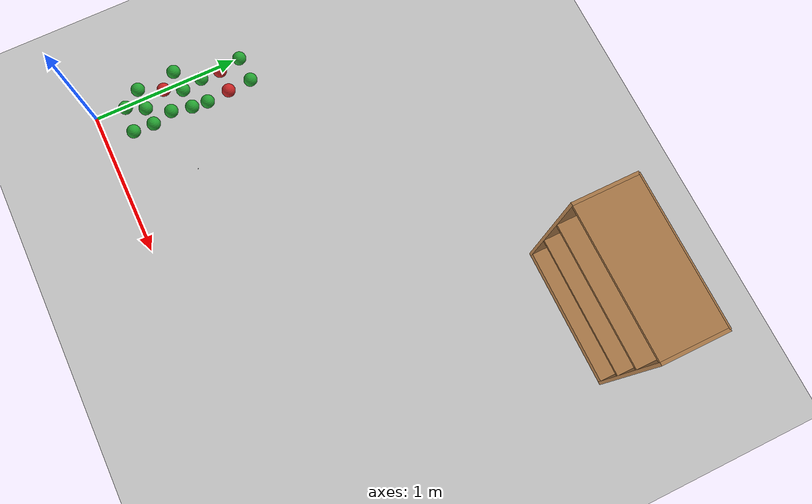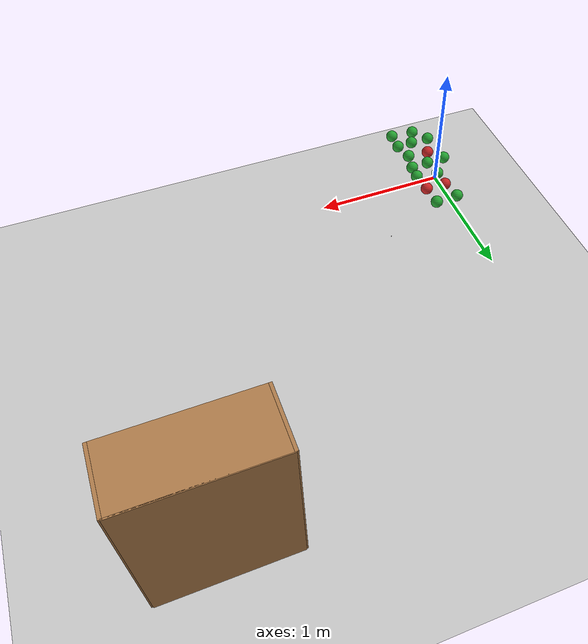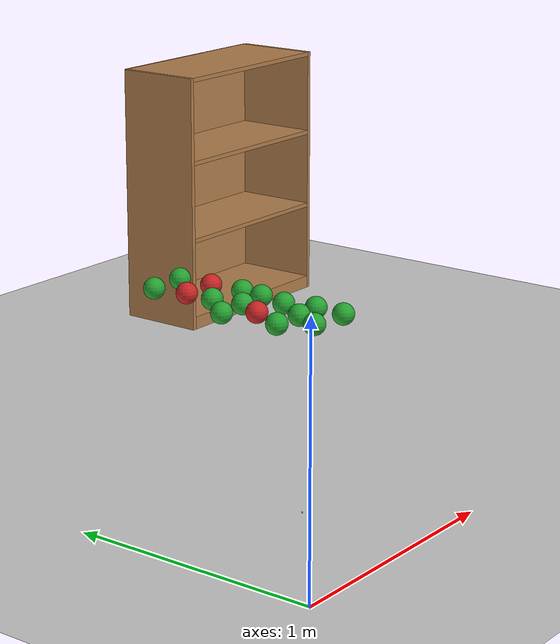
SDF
<sdf version="1.6">
 <world name="default">
  <model name="ground_plane">
   <static>1</static>
   <link name="link">
    <collision name="collision">
     <geometry><plane><normal>0 0 1</normal><size>100 100</size></plane></geometry>
     <surface><friction><ode><mu>100</mu><mu2>50</mu2></ode></friction></surface>
    </collision>
    <visual name="visual">
     <cast_shadows>0</cast_shadows>
     <geometry><plane><normal>0 0 1</normal><size>100 100</size></plane></geometry>
     <material>
      <script><uri>file://media/materials/scripts/gazebo.material</uri><name>Gazebo/Grey</name></script>
     </material>
    </visual>
   </link>
  </model>
  <model name="bookshelf_0">
   <static>1</static>
   <link name="link">
    <inertial><mass>1</mass></inertial>
    <collision name="back">
     <pose>0 0.005 0.6 0 -0 0</pose>
     <geometry><box><size>0.9 0.01 1.2</size></box></geometry>
    </collision>
    <visual name="visual1">
     <pose>0 0.005 0.6 0 -0 0</pose>
     <geometry><box><size>0.9 0.01 1.2</size></box></geometry>
     <material>
      <script><uri>file://media/materials/scripts/gazebo.material</uri><name>Gazebo/Wood</name></script>
     </material>
    </visual>
    <collision name="left_side">
     <pose>0.45 -0.195 0.6 0 -0 0</pose>
     <geometry><box><size>0.02 0.4 1.2</size></box></geometry>
    </collision>
    <visual name="visual2">
     <pose>0.45 -0.195 0.6 0 -0 0</pose>
     <geometry><box><size>0.02 0.4 1.2</size></box></geometry>
     <material>
      <script><uri>file://media/materials/scripts/gazebo.material</uri><name>Gazebo/Wood</name></script>
     </material>
    </visual>
    <collision name="right_side">
     <pose>-0.45 -0.195 0.6 0 -0 0</pose>
     <geometry><box><size>0.02 0.4 1.2</size></box></geometry>
    </collision>
    <visual name="visual3">
     <pose>-0.45 -0.195 0.6 0 -0 0</pose>
     <geometry><box><size>0.02 0.4 1.2</size></box></geometry>
     <material>
      <script><uri>file://media/materials/scripts/gazebo.material</uri><name>Gazebo/Wood</name></script>
     </material>
    </visual>
    <collision name="bottom">
     <pose>0 -0.195 0.03 0 -0 0</pose>
     <geometry><box><size>0.88 0.4 0.06</size></box></geometry>
    </collision>
    <visual name="visual4">
     <pose>0 -0.195 0.03 0 -0 0</pose>
     <geometry><box><size>0.88 0.4 0.06</size></box></geometry>
     <material>
      <script><uri>file://media/materials/scripts/gazebo.material</uri><name>Gazebo/Wood</name></script>
     </material>
    </visual>
    <collision name="top">
     <pose>0 -0.195 1.19 0 -0 0</pose>
     <geometry><box><size>0.88 0.4 0.02</size></box></geometry>
    </collision>
    <visual name="visual5">
     <pose>0 -0.195 1.19 0 -0 0</pose>
     <geometry><box><size>0.88 0.4 0.02</size></box></geometry>
     <material>
      <script><uri>file://media/materials/scripts/gazebo.material</uri><name>Gazebo/Wood</name></script>
     </material>
    </visual>
    <collision name="low_shelf">
     <pose>0 -0.195 0.43 0 -0 0</pose>
     <geometry><box><size>0.88 0.4 0.02</size></box></geometry>
    </collision>
    <visual name="visual6">
     <pose>0 -0.195 0.43 0 -0 0</pose>
     <geometry><box><size>0.88 0.4 0.02</size></box></geometry>
     <material>
      <script><uri>file://media/materials/scripts/gazebo.material</uri><name>Gazebo/Wood</name></script>
     </material>
    </visual>
    <collision name="high_shelf">
     <pose>0 -0.195 0.8 0 -0 0</pose>
     <geometry><box><size>0.88 0.4 0.02</size></box></geometry>
    </collision>
    <visual name="visual7">
     <pose>0 -0.195 0.8 0 -0 0</pose>
     <geometry><box><size>0.88 0.4 0.02</size></box></geometry>
     <material>
      <script><uri>file://media/materials/scripts/gazebo.material</uri><name>Gazebo/Wood</name></script>
     </material>
    </visual>
   </link>
   <pose>2.52008 2.58706 0 0 -0 0</pose>
  </model>
  <model name="ball_bearing">
   <link name="link">
    <pose>0 0 0.003 0 -0 0</pose>
    <inertial>
     <mass>0.0011</mass>
     <inertia>
      <ixx>3.96e-09</ixx>
      <ixy>0</ixy>
      <ixz>0</ixz>
      <iyy>3.96e-09</iyy>
      <iyz>0</iyz>
      <izz>3.96e-09</izz>
     </inertia>
    </inertial>
    <collision name="collision">
     <geometry><sphere><radius>0.003</radius></sphere></geometry>
     <surface>
      <contact>
       <poissons_ratio>0.305</poissons_ratio>
       <elastic_modulus>2e+11</elastic_modulus>
       <ode><kp>100000</kp><kd>100</kd><max_vel>100</max_vel><min_depth>0.001</min_depth></ode>
      </contact>
      <friction>
       <torsional>
        <coefficient>1</coefficient>
        <use_patch_radius>0</use_patch_radius>
        <surface_radius>0.01</surface_radius>
       </torsional>
      </friction>
     </surface>
    </collision>
    <visual name="visual">
     <geometry><sphere><radius>0.003</radius></sphere></geometry>
     <material>
      <script><uri>file://media/materials/scripts/gazebo.material</uri><name>Gazebo/Grey</name></script>
     </material>
    </visual>
    <velocity_decay><linear>0</linear><angular>0.005</angular></velocity_decay>
   </link>
   <pose>0.615587 0.485101 -0.001 0 -0 0</pose>
  </model>
  <model name="green_apple">
   <link name="link">
    <inertial>
     <mass>1</mass>
     <inertia><ixx>0.1</ixx><ixy>0</ixy><ixz>0</ixz><iyy>0.1</iyy><iyz>0</iyz><izz>0.1</izz></inertia>
    </inertial>
    <visual name="visual">
     <geometry><sphere><radius>0.04</radius></sphere></geometry>
     <material>
      <script><name>Gazebo/Green</name><uri>file://media/materials/scripts/gazebo.material</uri></script>
      <shader type="vertex"><normal_map>__default__</normal_map></shader>
      <ambient>0 1 0 1</ambient>
      <diffuse>0.7 0.7 0.7 1</diffuse>
      <specular>0.01 0.01 0.01 1</specular>
      <emissive>0 0 0 1</emissive>
     </material>
    </visual>
    <collision name="collision">
     <geometry><sphere><radius>0.04</radius></sphere></geometry>
     <surface>
      <friction>
       <ode><mu>1</mu><mu2>1</mu2><fdir1>0 0 0</fdir1><slip1>0</slip1><slip2>0</slip2></ode>
       <torsional>
        <coefficient>1</coefficient>
        <patch_radius>0</patch_radius>
        <surface_radius>0</surface_radius>
        <use_patch_radius>1</use_patch_radius>
        <ode><slip>0</slip></ode>
       </torsional>
      </friction>
      <bounce><restitution_coefficient>0</restitution_coefficient><threshold>1e+06</threshold></bounce>
      <contact>
       <collide_without_contact>0</collide_without_contact>
       <collide_without_contact_bitmask>1</collide_without_contact_bitmask>
       <collide_bitmask>1</collide_bitmask>
       <ode>
        <soft_cfm>0</soft_cfm>
        <soft_erp>0.2</soft_erp>
        <kp>1e+13</kp>
        <kd>1</kd>
        <max_vel>0.01</max_vel>
        <min_depth>0</min_depth>
       </ode>
       <bullet>
        <split_impulse>1</split_impulse>
        <split_impulse_penetration_threshold>-0.01</split_impulse_penetration_threshold>
        <soft_cfm>0</soft_cfm>
        <soft_erp>0.2</soft_erp>
        <kp>1e+13</kp>
        <kd>1</kd>
       </bullet>
      </contact>
     </surface>
    </collision>
   </link>
   <static>0</static>
   <pose>0.551902 0.999522 0.815 0 -0 0</pose>
  </model>
  <model name="red_apple">
   <link name="link">
    <inertial>
     <mass>1</mass>
     <inertia><ixx>0.1</ixx><ixy>0</ixy><ixz>0</ixz><iyy>0.1</iyy><iyz>0</iyz><izz>0.1</izz></inertia>
    </inertial>
    <visual name="visual">
     <geometry><sphere><radius>0.04</radius></sphere></geometry>
     <material>
      <script><name>Gazebo/Red</name><uri>file://media/materials/scripts/gazebo.material</uri></script>
      <shader type="vertex"><normal_map>__default__</normal_map></shader>
      <ambient>1 0 0 1</ambient>
      <diffuse>0.7 0.7 0.7 1</diffuse>
      <specular>0.01 0.01 0.01 1</specular>
      <emissive>0 0 0 1</emissive>
     </material>
    </visual>
    <collision name="collision">
     <geometry><sphere><radius>0.04</radius></sphere></geometry>
     <surface>
      <friction>
       <ode><mu>1</mu><mu2>1</mu2><fdir1>0 0 0</fdir1><slip1>0</slip1><slip2>0</slip2></ode>
       <torsional>
        <coefficient>1</coefficient>
        <patch_radius>0</patch_radius>
        <surface_radius>0</surface_radius>
        <use_patch_radius>1</use_patch_radius>
        <ode><slip>0</slip></ode>
       </torsional>
      </friction>
      <bounce><restitution_coefficient>0</restitution_coefficient><threshold>1e+06</threshold></bounce>
      <contact>
       <collide_without_contact>0</collide_without_contact>
       <collide_without_contact_bitmask>1</collide_without_contact_bitmask>
       <collide_bitmask>1</collide_bitmask>
       <ode>
        <soft_cfm>0</soft_cfm>
        <soft_erp>0.2</soft_erp>
        <kp>1e+13</kp>
        <kd>1</kd>
        <max_vel>0.01</max_vel>
        <min_depth>0</min_depth>
       </ode>
       <bullet>
        <split_impulse>1</split_impulse>
        <split_impulse_penetration_threshold>-0.01</split_impulse_penetration_threshold>
        <soft_cfm>0</soft_cfm>
        <soft_erp>0.2</soft_erp>
        <kp>1e+13</kp>
        <kd>1</kd>
       </bullet>
      </contact>
     </surface>
    </collision>
   </link>
   <static>0</static>
   <pose>0.559639 0.858674 0.815 0 -0 0</pose>
  </model>
  <model name="red_apple_clone">
   <link name="link">
    <inertial>
     <mass>1</mass>
     <inertia><ixx>0.1</ixx><ixy>0</ixy><ixz>0</ixz><iyy>0.1</iyy><iyz>0</iyz><izz>0.1</izz></inertia>
    </inertial>
    <visual name="visual">
     <geometry><sphere><radius>0.04</radius></sphere></geometry>
     <material>
      <script><name>Gazebo/Red</name><uri>file://media/materials/scripts/gazebo.material</uri></script>
      <shader type="vertex"><normal_map>__default__</normal_map></shader>
      <ambient>1 0 0 1</ambient>
      <diffuse>0.7 0.7 0.7 1</diffuse>
      <specular>0.01 0.01 0.01 1</specular>
      <emissive>0 0 0 1</emissive>
     </material>
    </visual>
    <collision name="collision">
     <geometry><sphere><radius>0.04</radius></sphere></geometry>
     <surface>
      <friction>
       <ode><mu>1</mu><mu2>1</mu2><fdir1>0 0 0</fdir1><slip1>0</slip1><slip2>0</slip2></ode>
       <torsional>
        <coefficient>1</coefficient>
        <patch_radius>0</patch_radius>
        <surface_radius>0</surface_radius>
        <use_patch_radius>1</use_patch_radius>
        <ode><slip>0</slip></ode>
       </torsional>
      </friction>
      <bounce><restitution_coefficient>0</restitution_coefficient><threshold>1e+06</threshold></bounce>
      <contact>
       <collide_without_contact>0</collide_without_contact>
       <collide_without_contact_bitmask>1</collide_without_contact_bitmask>
       <collide_bitmask>1</collide_bitmask>
       <ode>
        <soft_cfm>0</soft_cfm>
        <soft_erp>0.2</soft_erp>
        <kp>1e+13</kp>
        <kd>1</kd>
        <max_vel>0.01</max_vel>
        <min_depth>0</min_depth>
       </ode>
       <bullet>
        <split_impulse>1</split_impulse>
        <split_impulse_penetration_threshold>-0.01</split_impulse_penetration_threshold>
        <soft_cfm>0</soft_cfm>
        <soft_erp>0.2</soft_erp>
        <kp>1e+13</kp>
        <kd>1</kd>
       </bullet>
      </contact>
     </surface>
    </collision>
   </link>
   <static>0</static>
   <pose>0.424941 0.861418 0.815 0 -0 0</pose>
  </model>
  <model name="green_apple_clone">
   <link name="link">
    <inertial>
     <mass>1</mass>
     <inertia><ixx>0.1</ixx><ixy>0</ixy><ixz>0</ixz><iyy>0.1</iyy><iyz>0</iyz><izz>0.1</izz></inertia>
    </inertial>
    <visual name="visual">
     <geometry><sphere><radius>0.04</radius></sphere></geometry>
     <material>
      <script><name>Gazebo/Green</name><uri>file://media/materials/scripts/gazebo.material</uri></script>
      <shader type="vertex"><normal_map>__default__</normal_map></shader>
      <ambient>0 1 0 1</ambient>
      <diffuse>0.7 0.7 0.7 1</diffuse>
      <specular>0.01 0.01 0.01 1</specular>
      <emissive>0 0 0 1</emissive>
     </material>
    </visual>
    <collision name="collision">
     <geometry><sphere><radius>0.04</radius></sphere></geometry>
     <surface>
      <friction>
       <ode><mu>1</mu><mu2>1</mu2><fdir1>0 0 0</fdir1><slip1>0</slip1><slip2>0</slip2></ode>
       <torsional>
        <coefficient>1</coefficient>
        <patch_radius>0</patch_radius>
        <surface_radius>0</surface_radius>
        <use_patch_radius>1</use_patch_radius>
        <ode><slip>0</slip></ode>
       </torsional>
      </friction>
      <bounce><restitution_coefficient>0</restitution_coefficient><threshold>1e+06</threshold></bounce>
      <contact>
       <collide_without_contact>0</collide_without_contact>
       <collide_without_contact_bitmask>1</collide_without_contact_bitmask>
       <collide_bitmask>1</collide_bitmask>
       <ode>
        <soft_cfm>0</soft_cfm>
        <soft_erp>0.2</soft_erp>
        <kp>1e+13</kp>
        <kd>1</kd>
        <max_vel>0.01</max_vel>
        <min_depth>0</min_depth>
       </ode>
       <bullet>
        <split_impulse>1</split_impulse>
        <split_impulse_penetration_threshold>-0.01</split_impulse_penetration_threshold>
        <soft_cfm>0</soft_cfm>
        <soft_erp>0.2</soft_erp>
        <kp>1e+13</kp>
        <kd>1</kd>
       </bullet>
      </contact>
     </surface>
    </collision>
   </link>
   <static>0</static>
   <pose>0.400447 0.993653 0.815 0 -0 0</pose>
  </model>
  <model name="green_apple_clone_0">
   <link name="link">
    <inertial>
     <mass>1</mass>
     <inertia><ixx>0.1</ixx><ixy>0</ixy><ixz>0</ixz><iyy>0.1</iyy><iyz>0</iyz><izz>0.1</izz></inertia>
    </inertial>
    <visual name="visual">
     <geometry><sphere><radius>0.04</radius></sphere></geometry>
     <material>
      <script><name>Gazebo/Green</name><uri>file://media/materials/scripts/gazebo.material</uri></script>
      <shader type="vertex"><normal_map>__default__</normal_map></shader>
      <ambient>0 1 0 1</ambient>
      <diffuse>0.7 0.7 0.7 1</diffuse>
      <specular>0.01 0.01 0.01 1</specular>
      <emissive>0 0 0 1</emissive>
     </material>
    </visual>
    <collision name="collision">
     <geometry><sphere><radius>0.04</radius></sphere></geometry>
     <surface>
      <friction>
       <ode><mu>1</mu><mu2>1</mu2><fdir1>0 0 0</fdir1><slip1>0</slip1><slip2>0</slip2></ode>
       <torsional>
        <coefficient>1</coefficient>
        <patch_radius>0</patch_radius>
        <surface_radius>0</surface_radius>
        <use_patch_radius>1</use_patch_radius>
        <ode><slip>0</slip></ode>
       </torsional>
      </friction>
      <bounce><restitution_coefficient>0</restitution_coefficient><threshold>1e+06</threshold></bounce>
      <contact>
       <collide_without_contact>0</collide_without_contact>
       <collide_without_contact_bitmask>1</collide_without_contact_bitmask>
       <collide_bitmask>1</collide_bitmask>
       <ode>
        <soft_cfm>0</soft_cfm>
        <soft_erp>0.2</soft_erp>
        <kp>1e+13</kp>
        <kd>1</kd>
        <max_vel>0.01</max_vel>
        <min_depth>0</min_depth>
       </ode>
       <bullet>
        <split_impulse>1</split_impulse>
        <split_impulse_penetration_threshold>-0.01</split_impulse_penetration_threshold>
        <soft_cfm>0</soft_cfm>
        <soft_erp>0.2</soft_erp>
        <kp>1e+13</kp>
        <kd>1</kd>
       </bullet>
      </contact>
     </surface>
    </collision>
   </link>
   <static>0</static>
   <pose>0.423986 0.743621 0.815 0 -0 0</pose>
  </model>
  <model name="green_apple_clone_1">
   <link name="link">
    <inertial>
     <mass>1</mass>
     <inertia><ixx>0.1</ixx><ixy>0</ixy><ixz>0</ixz><iyy>0.1</iyy><iyz>0</iyz><izz>0.1</izz></inertia>
    </inertial>
    <visual name="visual">
     <geometry><sphere><radius>0.04</radius></sphere></geometry>
     <material>
      <script><name>Gazebo/Green</name><uri>file://media/materials/scripts/gazebo.material</uri></script>
      <shader type="vertex"><normal_map>__default__</normal_map></shader>
      <ambient>0 1 0 1</ambient>
      <diffuse>0.7 0.7 0.7 1</diffuse>
      <specular>0.01 0.01 0.01 1</specular>
      <emissive>0 0 0 1</emissive>
     </material>
    </visual>
    <collision name="collision">
     <geometry><sphere><radius>0.04</radius></sphere></geometry>
     <surface>
      <friction>
       <ode><mu>1</mu><mu2>1</mu2><fdir1>0 0 0</fdir1><slip1>0</slip1><slip2>0</slip2></ode>
       <torsional>
        <coefficient>1</coefficient>
        <patch_radius>0</patch_radius>
        <surface_radius>0</surface_radius>
        <use_patch_radius>1</use_patch_radius>
        <ode><slip>0</slip></ode>
       </torsional>
      </friction>
      <bounce><restitution_coefficient>0</restitution_coefficient><threshold>1e+06</threshold></bounce>
      <contact>
       <collide_without_contact>0</collide_without_contact>
       <collide_without_contact_bitmask>1</collide_without_contact_bitmask>
       <collide_bitmask>1</collide_bitmask>
       <ode>
        <soft_cfm>0</soft_cfm>
        <soft_erp>0.2</soft_erp>
        <kp>1e+13</kp>
        <kd>1</kd>
        <max_vel>0.01</max_vel>
        <min_depth>0</min_depth>
       </ode>
       <bullet>
        <split_impulse>1</split_impulse>
        <split_impulse_penetration_threshold>-0.01</split_impulse_penetration_threshold>
        <soft_cfm>0</soft_cfm>
        <soft_erp>0.2</soft_erp>
        <kp>1e+13</kp>
        <kd>1</kd>
       </bullet>
      </contact>
     </surface>
    </collision>
   </link>
   <static>0</static>
   <pose>0.570669 0.723231 0.815 0 -0 0</pose>
  </model>
  <model name="green_apple_clone_7">
   <link name="link">
    <inertial>
     <mass>1</mass>
     <inertia><ixx>0.1</ixx><ixy>0</ixy><ixz>0</ixz><iyy>0.1</iyy><iyz>0</iyz><izz>0.1</izz></inertia>
    </inertial>
    <visual name="visual">
     <geometry><sphere><radius>0.04</radius></sphere></geometry>
     <material>
      <script><name>Gazebo/Green</name><uri>file://media/materials/scripts/gazebo.material</uri></script>
      <shader type="vertex"><normal_map>__default__</normal_map></shader>
      <ambient>0 1 0 1</ambient>
      <diffuse>0.7 0.7 0.7 1</diffuse>
      <specular>0.01 0.01 0.01 1</specular>
      <emissive>0 0 0 1</emissive>
     </material>
    </visual>
    <collision name="collision">
     <geometry><sphere><radius>0.04</radius></sphere></geometry>
     <surface>
      <friction>
       <ode><mu>1</mu><mu2>1</mu2><fdir1>0 0 0</fdir1><slip1>0</slip1><slip2>0</slip2></ode>
       <torsional>
        <coefficient>1</coefficient>
        <patch_radius>0</patch_radius>
        <surface_radius>0</surface_radius>
        <use_patch_radius>1</use_patch_radius>
        <ode><slip>0</slip></ode>
       </torsional>
      </friction>
      <bounce><restitution_coefficient>0</restitution_coefficient><threshold>1e+06</threshold></bounce>
      <contact>
       <collide_without_contact>0</collide_without_contact>
       <collide_without_contact_bitmask>1</collide_without_contact_bitmask>
       <collide_bitmask>1</collide_bitmask>
       <ode>
        <soft_cfm>0</soft_cfm>
        <soft_erp>0.2</soft_erp>
        <kp>1e+13</kp>
        <kd>1</kd>
        <max_vel>0.01</max_vel>
        <min_depth>0</min_depth>
       </ode>
       <bullet>
        <split_impulse>1</split_impulse>
        <split_impulse_penetration_threshold>-0.01</split_impulse_penetration_threshold>
        <soft_cfm>0</soft_cfm>
        <soft_erp>0.2</soft_erp>
        <kp>1e+13</kp>
        <kd>1</kd>
       </bullet>
      </contact>
     </surface>
    </collision>
   </link>
   <static>0</static>
   <pose>0.562367 0.63008 0.815 0 -0 0</pose>
  </model>
  <model name="green_apple_clone_8">
   <link name="link">
    <inertial>
     <mass>1</mass>
     <inertia><ixx>0.1</ixx><ixy>0</ixy><ixz>0</ixz><iyy>0.1</iyy><iyz>0</iyz><izz>0.1</izz></inertia>
    </inertial>
    <visual name="visual">
     <geometry><sphere><radius>0.04</radius></sphere></geometry>
     <material>
      <script><name>Gazebo/Green</name><uri>file://media/materials/scripts/gazebo.material</uri></script>
      <shader type="vertex"><normal_map>__default__</normal_map></shader>
      <ambient>0 1 0 1</ambient>
      <diffuse>0.7 0.7 0.7 1</diffuse>
      <specular>0.01 0.01 0.01 1</specular>
      <emissive>0 0 0 1</emissive>
     </material>
    </visual>
    <collision name="collision">
     <geometry><sphere><radius>0.04</radius></sphere></geometry>
     <surface>
      <friction>
       <ode><mu>1</mu><mu2>1</mu2><fdir1>0 0 0</fdir1><slip1>0</slip1><slip2>0</slip2></ode>
       <torsional>
        <coefficient>1</coefficient>
        <patch_radius>0</patch_radius>
        <surface_radius>0</surface_radius>
        <use_patch_radius>1</use_patch_radius>
        <ode><slip>0</slip></ode>
       </torsional>
      </friction>
      <bounce><restitution_coefficient>0</restitution_coefficient><threshold>1e+06</threshold></bounce>
      <contact>
       <collide_without_contact>0</collide_without_contact>
       <collide_without_contact_bitmask>1</collide_without_contact_bitmask>
       <collide_bitmask>1</collide_bitmask>
       <ode>
        <soft_cfm>0</soft_cfm>
        <soft_erp>0.2</soft_erp>
        <kp>1e+13</kp>
        <kd>1</kd>
        <max_vel>0.01</max_vel>
        <min_depth>0</min_depth>
       </ode>
       <bullet>
        <split_impulse>1</split_impulse>
        <split_impulse_penetration_threshold>-0.01</split_impulse_penetration_threshold>
        <soft_cfm>0</soft_cfm>
        <soft_erp>0.2</soft_erp>
        <kp>1e+13</kp>
        <kd>1</kd>
       </bullet>
      </contact>
     </surface>
    </collision>
   </link>
   <static>0</static>
   <pose>0.536067 0.510838 0.815 0 -0 0</pose>
  </model>
  <model name="green_apple_clone_9">
   <link name="link">
    <inertial>
     <mass>1</mass>
     <inertia><ixx>0.1</ixx><ixy>0</ixy><ixz>0</ixz><iyy>0.1</iyy><iyz>0</iyz><izz>0.1</izz></inertia>
    </inertial>
    <visual name="visual">
     <geometry><sphere><radius>0.04</radius></sphere></geometry>
     <material>
      <script><name>Gazebo/Green</name><uri>file://media/materials/scripts/gazebo.material</uri></script>
      <shader type="vertex"><normal_map>__default__</normal_map></shader>
      <ambient>0 1 0 1</ambient>
      <diffuse>0.7 0.7 0.7 1</diffuse>
      <specular>0.01 0.01 0.01 1</specular>
      <emissive>0 0 0 1</emissive>
     </material>
    </visual>
    <collision name="collision">
     <geometry><sphere><radius>0.04</radius></sphere></geometry>
     <surface>
      <friction>
       <ode><mu>1</mu><mu2>1</mu2><fdir1>0 0 0</fdir1><slip1>0</slip1><slip2>0</slip2></ode>
       <torsional>
        <coefficient>1</coefficient>
        <patch_radius>0</patch_radius>
        <surface_radius>0</surface_radius>
        <use_patch_radius>1</use_patch_radius>
        <ode><slip>0</slip></ode>
       </torsional>
      </friction>
      <bounce><restitution_coefficient>0</restitution_coefficient><threshold>1e+06</threshold></bounce>
      <contact>
       <collide_without_contact>0</collide_without_contact>
       <collide_without_contact_bitmask>1</collide_without_contact_bitmask>
       <collide_bitmask>1</collide_bitmask>
       <ode>
        <soft_cfm>0</soft_cfm>
        <soft_erp>0.2</soft_erp>
        <kp>1e+13</kp>
        <kd>1</kd>
        <max_vel>0.01</max_vel>
        <min_depth>0</min_depth>
       </ode>
       <bullet>
        <split_impulse>1</split_impulse>
        <split_impulse_penetration_threshold>-0.01</split_impulse_penetration_threshold>
        <soft_cfm>0</soft_cfm>
        <soft_erp>0.2</soft_erp>
        <kp>1e+13</kp>
        <kd>1</kd>
       </bullet>
      </contact>
     </surface>
    </collision>
   </link>
   <static>0</static>
   <pose>0.564495 0.390872 0.815 0 -0 0</pose>
  </model>
  <model name="green_apple_clone_10">
   <link name="link">
    <inertial>
     <mass>1</mass>
     <inertia><ixx>0.1</ixx><ixy>0</ixy><ixz>0</ixz><iyy>0.1</iyy><iyz>0</iyz><izz>0.1</izz></inertia>
    </inertial>
    <visual name="visual">
     <geometry><sphere><radius>0.04</radius></sphere></geometry>
     <material>
      <script><name>Gazebo/Green</name><uri>file://media/materials/scripts/gazebo.material</uri></script>
      <shader type="vertex"><normal_map>__default__</normal_map></shader>
      <ambient>0 1 0 1</ambient>
      <diffuse>0.7 0.7 0.7 1</diffuse>
      <specular>0.01 0.01 0.01 1</specular>
      <emissive>0 0 0 1</emissive>
     </material>
    </visual>
    <collision name="collision">
     <geometry><sphere><radius>0.04</radius></sphere></geometry>
     <surface>
      <friction>
       <ode><mu>1</mu><mu2>1</mu2><fdir1>0 0 0</fdir1><slip1>0</slip1><slip2>0</slip2></ode>
       <torsional>
        <coefficient>1</coefficient>
        <patch_radius>0</patch_radius>
        <surface_radius>0</surface_radius>
        <use_patch_radius>1</use_patch_radius>
        <ode><slip>0</slip></ode>
       </torsional>
      </friction>
      <bounce><restitution_coefficient>0</restitution_coefficient><threshold>1e+06</threshold></bounce>
      <contact>
       <collide_without_contact>0</collide_without_contact>
       <collide_without_contact_bitmask>1</collide_without_contact_bitmask>
       <collide_bitmask>1</collide_bitmask>
       <ode>
        <soft_cfm>0</soft_cfm>
        <soft_erp>0.2</soft_erp>
        <kp>1e+13</kp>
        <kd>1</kd>
        <max_vel>0.01</max_vel>
        <min_depth>0</min_depth>
       </ode>
       <bullet>
        <split_impulse>1</split_impulse>
        <split_impulse_penetration_threshold>-0.01</split_impulse_penetration_threshold>
        <soft_cfm>0</soft_cfm>
        <soft_erp>0.2</soft_erp>
        <kp>1e+13</kp>
        <kd>1</kd>
       </bullet>
      </contact>
     </surface>
    </collision>
   </link>
   <static>0</static>
   <pose>0.559683 0.270035 0.815 0 -0 0</pose>
  </model>
  <model name="red_apple_clone_clone_0">
   <link name="link">
    <inertial>
     <mass>1</mass>
     <inertia><ixx>0.1</ixx><ixy>0</ixy><ixz>0</ixz><iyy>0.1</iyy><iyz>0</iyz><izz>0.1</izz></inertia>
    </inertial>
    <visual name="visual">
     <geometry><sphere><radius>0.04</radius></sphere></geometry>
     <material>
      <script><name>Gazebo/Red</name><uri>file://media/materials/scripts/gazebo.material</uri></script>
      <shader type="vertex"><normal_map>__default__</normal_map></shader>
      <ambient>1 0 0 1</ambient>
      <diffuse>0.7 0.7 0.7 1</diffuse>
      <specular>0.01 0.01 0.01 1</specular>
      <emissive>0 0 0 1</emissive>
     </material>
    </visual>
    <collision name="collision">
     <geometry><sphere><radius>0.04</radius></sphere></geometry>
     <surface>
      <friction>
       <ode><mu>1</mu><mu2>1</mu2><fdir1>0 0 0</fdir1><slip1>0</slip1><slip2>0</slip2></ode>
       <torsional>
        <coefficient>1</coefficient>
        <patch_radius>0</patch_radius>
        <surface_radius>0</surface_radius>
        <use_patch_radius>1</use_patch_radius>
        <ode><slip>0</slip></ode>
       </torsional>
      </friction>
      <bounce><restitution_coefficient>0</restitution_coefficient><threshold>1e+06</threshold></bounce>
      <contact>
       <collide_without_contact>0</collide_without_contact>
       <collide_without_contact_bitmask>1</collide_without_contact_bitmask>
       <collide_bitmask>1</collide_bitmask>
       <ode>
        <soft_cfm>0</soft_cfm>
        <soft_erp>0.2</soft_erp>
        <kp>1e+13</kp>
        <kd>1</kd>
        <max_vel>0.01</max_vel>
        <min_depth>0</min_depth>
       </ode>
       <bullet>
        <split_impulse>1</split_impulse>
        <split_impulse_penetration_threshold>-0.01</split_impulse_penetration_threshold>
        <soft_cfm>0</soft_cfm>
        <soft_erp>0.2</soft_erp>
        <kp>1e+13</kp>
        <kd>1</kd>
       </bullet>
      </contact>
     </surface>
    </collision>
   </link>
   <static>0</static>
   <pose>0.39433 0.520618 0.815 0 -0 0</pose>
  </model>
  <model name="green_apple_clone_1_clone_10">
   <link name="link">
    <inertial>
     <mass>1</mass>
     <inertia><ixx>0.1</ixx><ixy>0</ixy><ixz>0</ixz><iyy>0.1</iyy><iyz>0</iyz><izz>0.1</izz></inertia>
    </inertial>
    <visual name="visual">
     <geometry><sphere><radius>0.04</radius></sphere></geometry>
     <material>
      <script><name>Gazebo/Green</name><uri>file://media/materials/scripts/gazebo.material</uri></script>
      <shader type="vertex"><normal_map>__default__</normal_map></shader>
      <ambient>0 1 0 1</ambient>
      <diffuse>0.7 0.7 0.7 1</diffuse>
      <specular>0.01 0.01 0.01 1</specular>
      <emissive>0 0 0 1</emissive>
     </material>
    </visual>
    <collision name="collision">
     <geometry><sphere><radius>0.04</radius></sphere></geometry>
     <surface>
      <friction>
       <ode><mu>1</mu><mu2>1</mu2><fdir1>0 0 0</fdir1><slip1>0</slip1><slip2>0</slip2></ode>
       <torsional>
        <coefficient>1</coefficient>
        <patch_radius>0</patch_radius>
        <surface_radius>0</surface_radius>
        <use_patch_radius>1</use_patch_radius>
        <ode><slip>0</slip></ode>
       </torsional>
      </friction>
      <bounce><restitution_coefficient>0</restitution_coefficient><threshold>1e+06</threshold></bounce>
      <contact>
       <collide_without_contact>0</collide_without_contact>
       <collide_without_contact_bitmask>1</collide_without_contact_bitmask>
       <collide_bitmask>1</collide_bitmask>
       <ode>
        <soft_cfm>0</soft_cfm>
        <soft_erp>0.2</soft_erp>
        <kp>1e+13</kp>
        <kd>1</kd>
        <max_vel>0.01</max_vel>
        <min_depth>0</min_depth>
       </ode>
       <bullet>
        <split_impulse>1</split_impulse>
        <split_impulse_penetration_threshold>-0.01</split_impulse_penetration_threshold>
        <soft_cfm>0</soft_cfm>
        <soft_erp>0.2</soft_erp>
        <kp>1e+13</kp>
        <kd>1</kd>
       </bullet>
      </contact>
     </surface>
    </collision>
   </link>
   <static>0</static>
   <pose>0.314963 0.61385 0.815 0 -0 0</pose>
  </model>
  <model name="green_apple_clone_1_clone_11">
   <link name="link">
    <inertial>
     <mass>1</mass>
     <inertia><ixx>0.1</ixx><ixy>0</ixy><ixz>0</ixz><iyy>0.1</iyy><iyz>0</iyz><izz>0.1</izz></inertia>
    </inertial>
    <visual name="visual">
     <geometry><sphere><radius>0.04</radius></sphere></geometry>
     <material>
      <script><name>Gazebo/Green</name><uri>file://media/materials/scripts/gazebo.material</uri></script>
      <shader type="vertex"><normal_map>__default__</normal_map></shader>
      <ambient>0 1 0 1</ambient>
      <diffuse>0.7 0.7 0.7 1</diffuse>
      <specular>0.01 0.01 0.01 1</specular>
      <emissive>0 0 0 1</emissive>
     </material>
    </visual>
    <collision name="collision">
     <geometry><sphere><radius>0.04</radius></sphere></geometry>
     <surface>
      <friction>
       <ode><mu>1</mu><mu2>1</mu2><fdir1>0 0 0</fdir1><slip1>0</slip1><slip2>0</slip2></ode>
       <torsional>
        <coefficient>1</coefficient>
        <patch_radius>0</patch_radius>
        <surface_radius>0</surface_radius>
        <use_patch_radius>1</use_patch_radius>
        <ode><slip>0</slip></ode>
       </torsional>
      </friction>
      <bounce><restitution_coefficient>0</restitution_coefficient><threshold>1e+06</threshold></bounce>
      <contact>
       <collide_without_contact>0</collide_without_contact>
       <collide_without_contact_bitmask>1</collide_without_contact_bitmask>
       <collide_bitmask>1</collide_bitmask>
       <ode>
        <soft_cfm>0</soft_cfm>
        <soft_erp>0.2</soft_erp>
        <kp>1e+13</kp>
        <kd>1</kd>
        <max_vel>0.01</max_vel>
        <min_depth>0</min_depth>
       </ode>
       <bullet>
        <split_impulse>1</split_impulse>
        <split_impulse_penetration_threshold>-0.01</split_impulse_penetration_threshold>
        <soft_cfm>0</soft_cfm>
        <soft_erp>0.2</soft_erp>
        <kp>1e+13</kp>
        <kd>1</kd>
       </bullet>
      </contact>
     </surface>
    </collision>
   </link>
   <static>0</static>
   <pose>0.443198 0.622245 0.815 0 -0 0</pose>
  </model>
  <model name="green_apple_clone_1_clone_15">
   <link name="link">
    <inertial>
     <mass>1</mass>
     <inertia><ixx>0.1</ixx><ixy>0</ixy><ixz>0</ixz><iyy>0.1</iyy><iyz>0</iyz><izz>0.1</izz></inertia>
    </inertial>
    <visual name="visual">
     <geometry><sphere><radius>0.04</radius></sphere></geometry>
     <material>
      <script><name>Gazebo/Green</name><uri>file://media/materials/scripts/gazebo.material</uri></script>
      <shader type="vertex"><normal_map>__default__</normal_map></shader>
      <ambient>0 1 0 1</ambient>
      <diffuse>0.7 0.7 0.7 1</diffuse>
      <specular>0.01 0.01 0.01 1</specular>
      <emissive>0 0 0 1</emissive>
     </material>
    </visual>
    <collision name="collision">
     <geometry><sphere><radius>0.04</radius></sphere></geometry>
     <surface>
      <friction>
       <ode><mu>1</mu><mu2>1</mu2><fdir1>0 0 0</fdir1><slip1>0</slip1><slip2>0</slip2></ode>
       <torsional>
        <coefficient>1</coefficient>
        <patch_radius>0</patch_radius>
        <surface_radius>0</surface_radius>
        <use_patch_radius>1</use_patch_radius>
        <ode><slip>0</slip></ode>
       </torsional>
      </friction>
      <bounce><restitution_coefficient>0</restitution_coefficient><threshold>1e+06</threshold></bounce>
      <contact>
       <collide_without_contact>0</collide_without_contact>
       <collide_without_contact_bitmask>1</collide_without_contact_bitmask>
       <collide_bitmask>1</collide_bitmask>
       <ode>
        <soft_cfm>0</soft_cfm>
        <soft_erp>0.2</soft_erp>
        <kp>1e+13</kp>
        <kd>1</kd>
        <max_vel>0.01</max_vel>
        <min_depth>0</min_depth>
       </ode>
       <bullet>
        <split_impulse>1</split_impulse>
        <split_impulse_penetration_threshold>-0.01</split_impulse_penetration_threshold>
        <soft_cfm>0</soft_cfm>
        <soft_erp>0.2</soft_erp>
        <kp>1e+13</kp>
        <kd>1</kd>
       </bullet>
      </contact>
     </surface>
    </collision>
   </link>
   <static>0</static>
   <pose>0.45724 0.384544 0.815 0 -0 0</pose>
  </model>
  <model name="green_apple_clone_1_clone_16">
   <link name="link">
    <inertial>
     <mass>1</mass>
     <inertia><ixx>0.1</ixx><ixy>0</ixy><ixz>0</ixz><iyy>0.1</iyy><iyz>0</iyz><izz>0.1</izz></inertia>
    </inertial>
    <visual name="visual">
     <geometry><sphere><radius>0.04</radius></sphere></geometry>
     <material>
      <script><name>Gazebo/Green</name><uri>file://media/materials/scripts/gazebo.material</uri></script>
      <shader type="vertex"><normal_map>__default__</normal_map></shader>
      <ambient>0 1 0 1</ambient>
      <diffuse>0.7 0.7 0.7 1</diffuse>
      <specular>0.01 0.01 0.01 1</specular>
      <emissive>0 0 0 1</emissive>
     </material>
    </visual>
    <collision name="collision">
     <geometry><sphere><radius>0.04</radius></sphere></geometry>
     <surface>
      <friction>
       <ode><mu>1</mu><mu2>1</mu2><fdir1>0 0 0</fdir1><slip1>0</slip1><slip2>0</slip2></ode>
       <torsional>
        <coefficient>1</coefficient>
        <patch_radius>0</patch_radius>
        <surface_radius>0</surface_radius>
        <use_patch_radius>1</use_patch_radius>
        <ode><slip>0</slip></ode>
       </torsional>
      </friction>
      <bounce><restitution_coefficient>0</restitution_coefficient><threshold>1e+06</threshold></bounce>
      <contact>
       <collide_without_contact>0</collide_without_contact>
       <collide_without_contact_bitmask>1</collide_without_contact_bitmask>
       <collide_bitmask>1</collide_bitmask>
       <ode>
        <soft_cfm>0</soft_cfm>
        <soft_erp>0.2</soft_erp>
        <kp>1e+13</kp>
        <kd>1</kd>
        <max_vel>0.01</max_vel>
        <min_depth>0</min_depth>
       </ode>
       <bullet>
        <split_impulse>1</split_impulse>
        <split_impulse_penetration_threshold>-0.01</split_impulse_penetration_threshold>
        <soft_cfm>0</soft_cfm>
        <soft_erp>0.2</soft_erp>
        <kp>1e+13</kp>
        <kd>1</kd>
       </bullet>
      </contact>
     </surface>
    </collision>
   </link>
   <static>0</static>
   <pose>0.330218 0.385295 0.815 0 -0 0</pose>
  </model>
  <model name="green_apple_clone_1_clone_23">
   <link name="link">
    <inertial>
     <mass>1</mass>
     <inertia><ixx>0.1</ixx><ixy>0</ixy><ixz>0</ixz><iyy>0.1</iyy><iyz>0</iyz><izz>0.1</izz></inertia>
    </inertial>
    <visual name="visual">
     <geometry><sphere><radius>0.04</radius></sphere></geometry>
     <material>
      <script><name>Gazebo/Green</name><uri>file://media/materials/scripts/gazebo.material</uri></script>
      <shader type="vertex"><normal_map>__default__</normal_map></shader>
      <ambient>0 1 0 1</ambient>
      <diffuse>0.7 0.7 0.7 1</diffuse>
      <specular>0.01 0.01 0.01 1</specular>
      <emissive>0 0 0 1</emissive>
     </material>
    </visual>
    <collision name="collision">
     <geometry><sphere><radius>0.04</radius></sphere></geometry>
     <surface>
      <friction>
       <ode><mu>1</mu><mu2>1</mu2><fdir1>0 0 0</fdir1><slip1>0</slip1><slip2>0</slip2></ode>
       <torsional>
        <coefficient>1</coefficient>
        <patch_radius>0</patch_radius>
        <surface_radius>0</surface_radius>
        <use_patch_radius>1</use_patch_radius>
        <ode><slip>0</slip></ode>
       </torsional>
      </friction>
      <bounce><restitution_coefficient>0</restitution_coefficient><threshold>1e+06</threshold></bounce>
      <contact>
       <collide_without_contact>0</collide_without_contact>
       <collide_without_contact_bitmask>1</collide_without_contact_bitmask>
       <collide_bitmask>1</collide_bitmask>
       <ode>
        <soft_cfm>0</soft_cfm>
        <soft_erp>0.2</soft_erp>
        <kp>1e+13</kp>
        <kd>1</kd>
        <max_vel>0.01</max_vel>
        <min_depth>0</min_depth>
       </ode>
       <bullet>
        <split_impulse>1</split_impulse>
        <split_impulse_penetration_threshold>-0.01</split_impulse_penetration_threshold>
        <soft_cfm>0</soft_cfm>
        <soft_erp>0.2</soft_erp>
        <kp>1e+13</kp>
        <kd>1</kd>
       </bullet>
      </contact>
     </surface>
    </collision>
   </link>
   <static>0</static>
   <pose>0.404274 0.280812 0.815 0 -0 0</pose>
  </model>
 </world>
</sdf>
